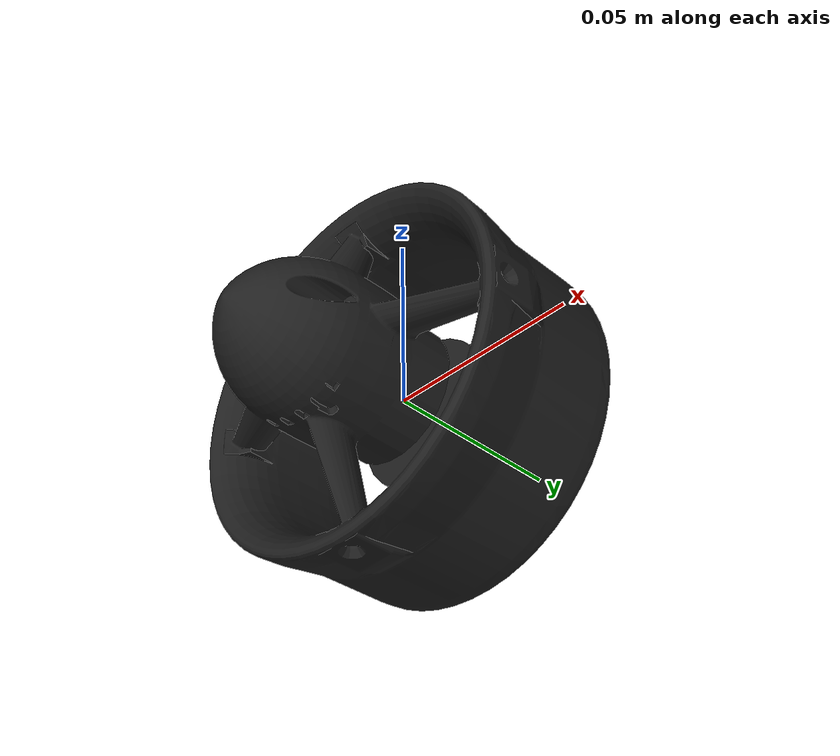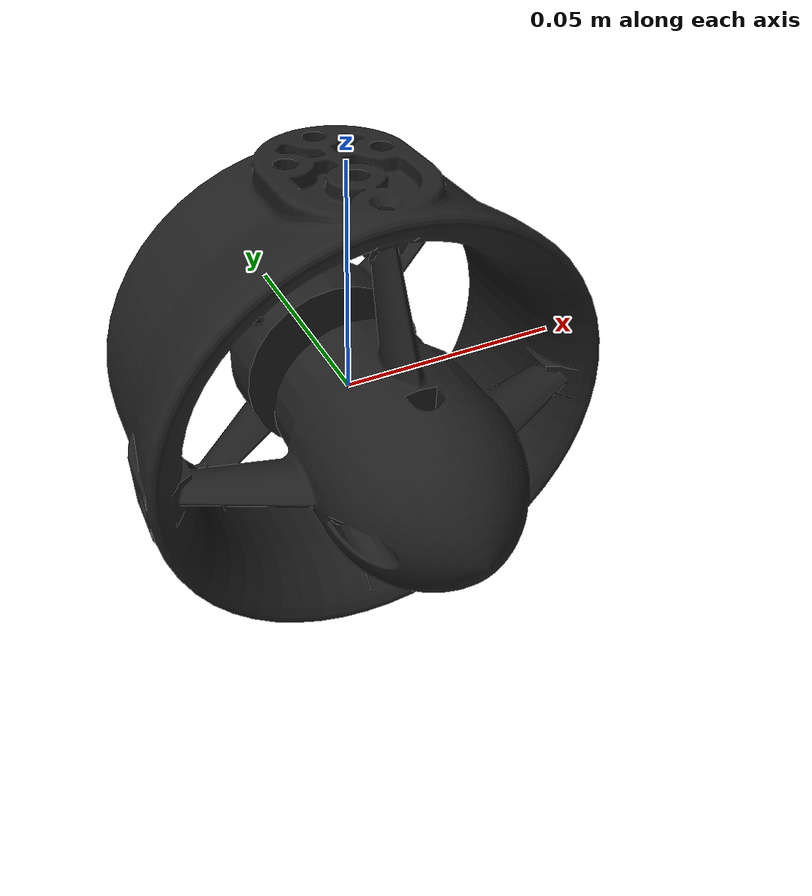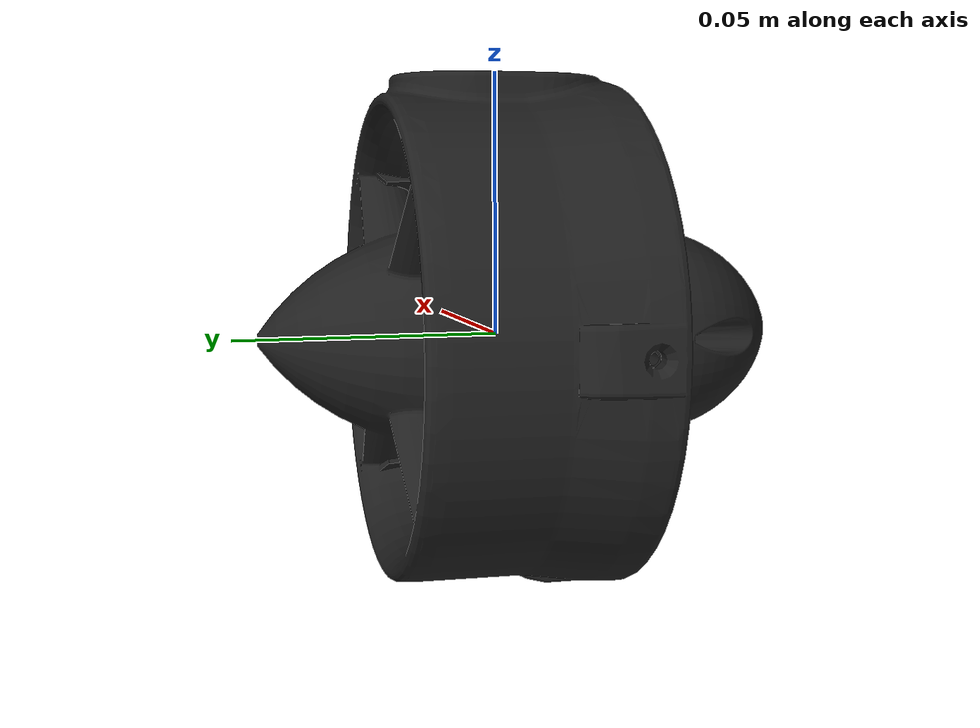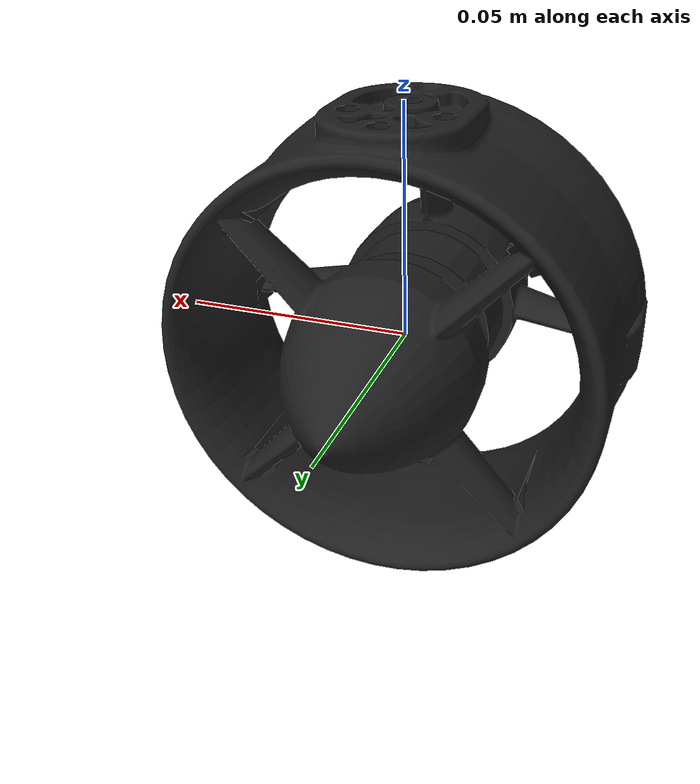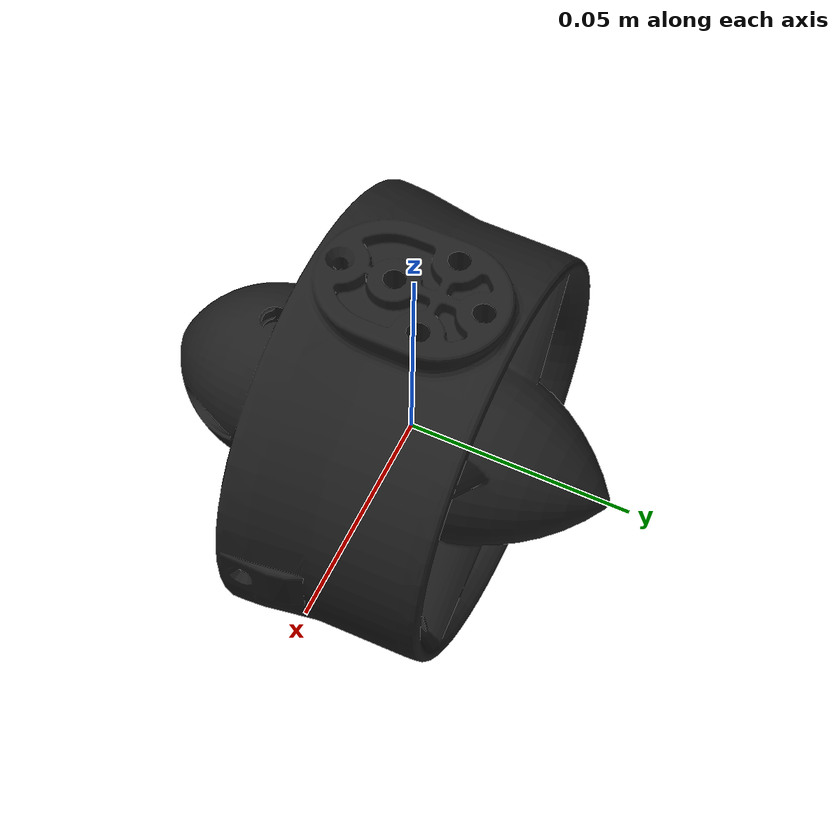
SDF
<sdf version='1.7'>
  <model name='T100-THRUSTER-SHELL'>
    <link name='T100-THRUSTER-SHELL'>
      <inertial>
        <pose>3.9e-05 -0.004977 0.009261 0 -0 0</pose>
        <mass>0.38044</mass>
        <inertia>
          <ixx>0.00039776</ixx>
          <ixy>-1.3762e-07</ixy>
          <ixz>-4.8314e-07</ixz>
          <iyy>0.00040427</iyy>
          <iyz>1.5933e-05</iyz>
          <izz>0.00027739</izz>
        </inertia>
      </inertial>
      <collision name='T100-THRUSTER-SHELL_collision'>
        <pose>0 0 0 1.5708 -0 0</pose>
        <geometry>
          <mesh>
            <scale>1 1 1</scale>
            <uri>/home/jake/triton/simulation/models/T100-THRUSTER-SHELL/meshes/T100-THRUSTER-SHELL.dae</uri>
          </mesh>
        </geometry>
      </collision>
      <visual name='T100-THRUSTER-SHELL_visual'>
        <pose>0 0 0 1.5708 -0 0</pose>
        <geometry>
          <mesh>
            <scale>1 1 1</scale>
            <uri>/home/jake/triton/simulation/models/T100-THRUSTER-SHELL/meshes/T100-THRUSTER-SHELL.dae</uri>
          </mesh>
        </geometry>
       <material>
          <lighting>1</lighting>
          <script>
            <uri>file://media/materials/scripts/gazebo.material</uri>
            <name>Gazebo/Black</name>
          </script>
          <shader type='pixel'/>
          <emissive>0 0 0 1</emissive>
        </material>
      </visual>
    </link>
  </model>
</sdf>
